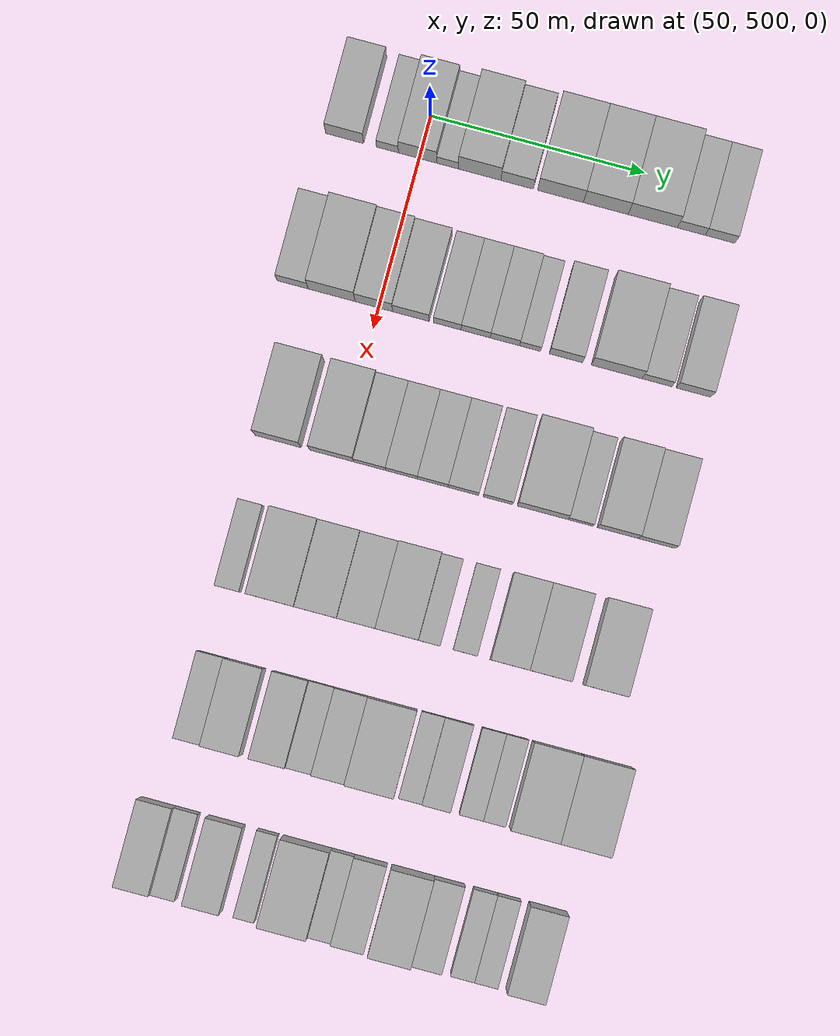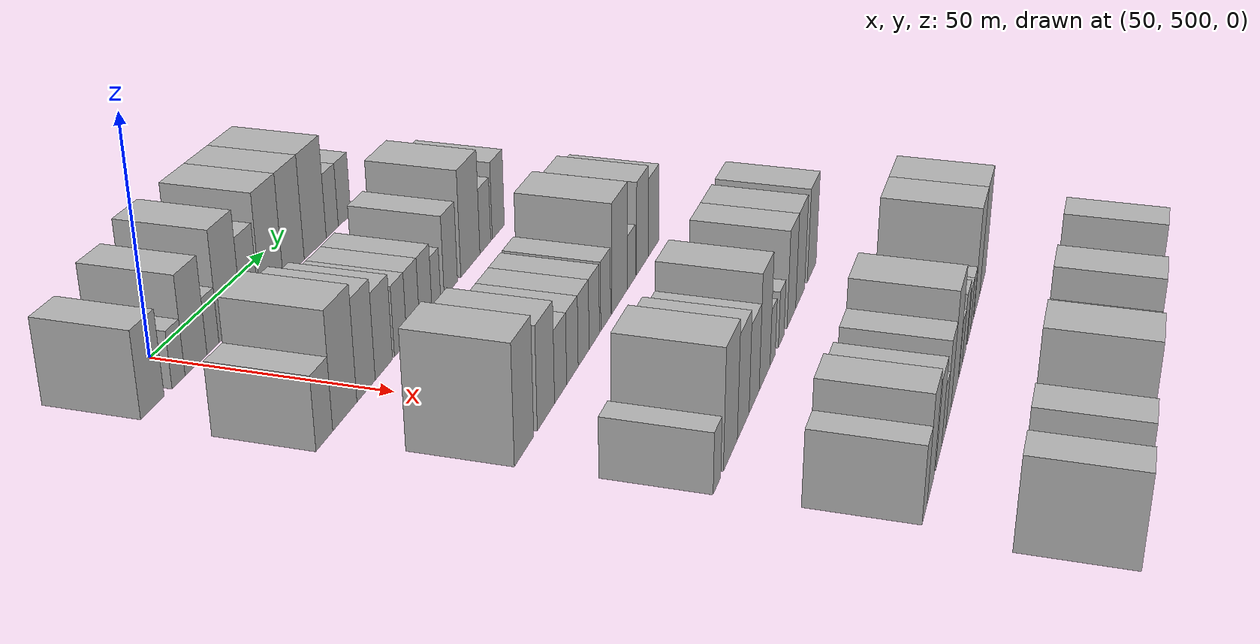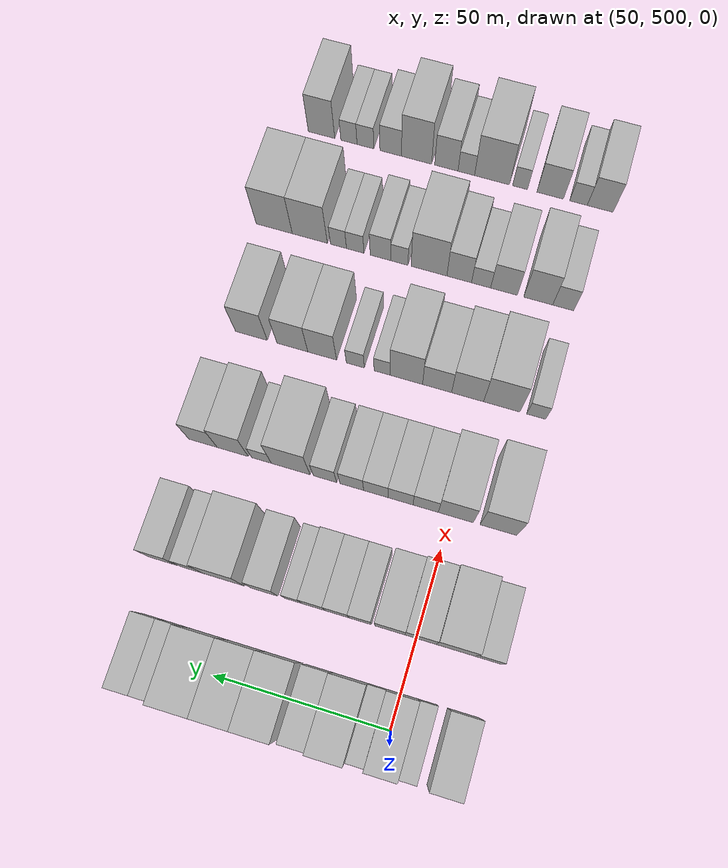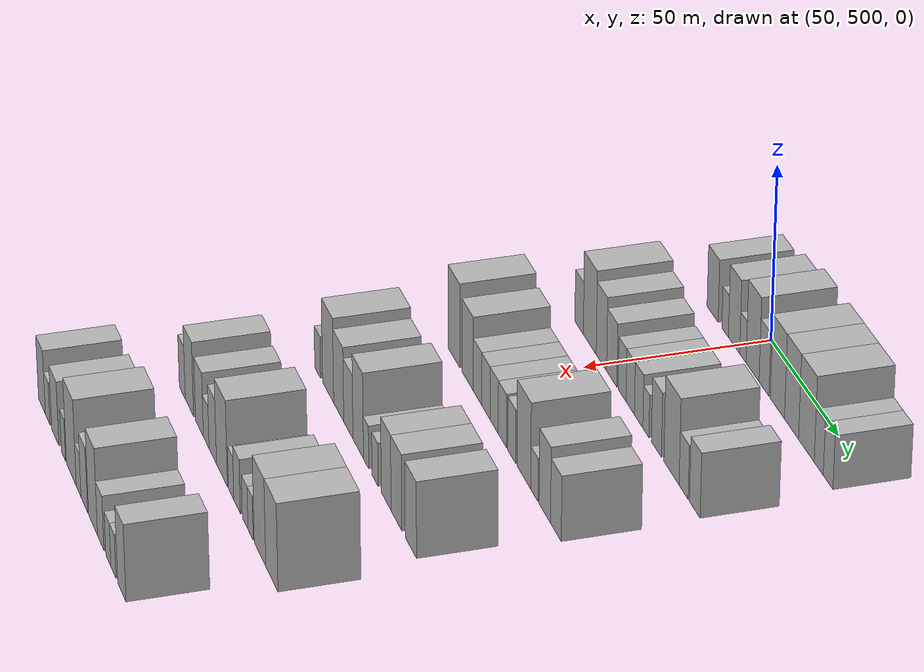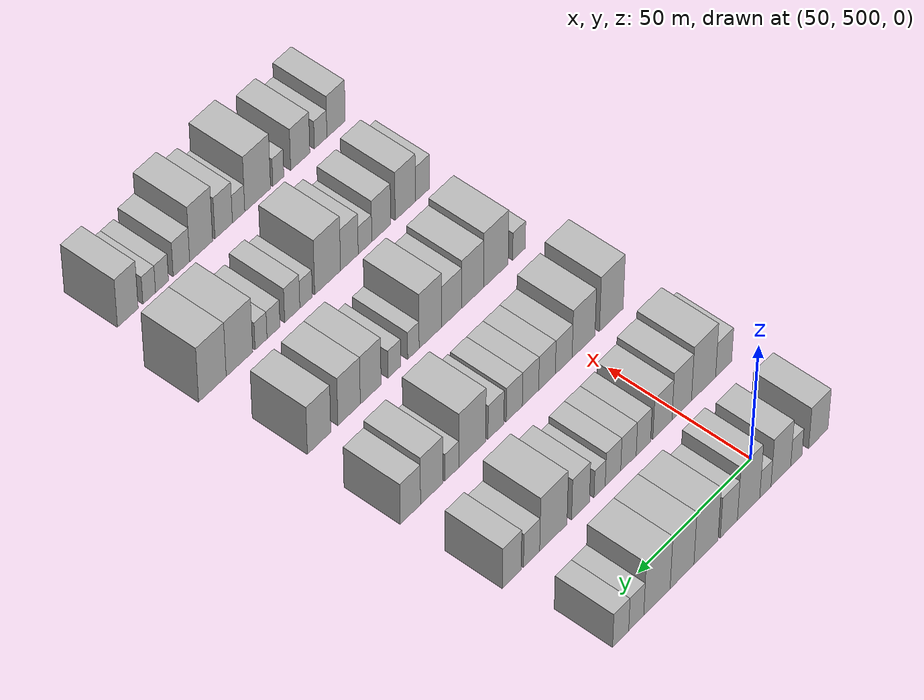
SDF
<sdf version="1.6">
 <world name="default">
  <model name="building_108">
   <static>1</static>
   <pose>50.0000 482.5983 0 0.000000 0.000000 0.000000</pose>
   <link name="link">
    <pose>0 0 9.00 0 0 0</pose>
    <collision name="collision"><geometry><box><size>20.0000 8.8290 18.0000</size></box></geometry></collision>
    <visual name="visual">
     <cast_shadows>0</cast_shadows>
     <geometry><box><size>20.0000 8.8290 18.0000</size></box></geometry>
     <material>
      <script>
       <uri>model://HANNAS_wall/materials/scripts</uri>
       <uri>model://HANNAS_wall/materials/textures</uri>
       <name>vrc/HANNAS_wall</name>
      </script>
     </material>
    </visual>
   </link>
  </model>
  <model name="building_109">
   <static>1</static>
   <pose>50.0000 492.5863 0 0.000000 0.000000 0.000000</pose>
   <link name="link">
    <pose>0 0 6.00 0 0 0</pose>
    <collision name="collision"><geometry><box><size>20.0000 5.1470 12.0000</size></box></geometry></collision>
    <visual name="visual">
     <cast_shadows>0</cast_shadows>
     <geometry><box><size>20.0000 5.1470 12.0000</size></box></geometry>
     <material>
      <script>
       <uri>model://HANNAS_wall/materials/scripts</uri>
       <uri>model://HANNAS_wall/materials/textures</uri>
       <name>vrc/HANNAS_wall</name>
      </script>
     </material>
    </visual>
   </link>
  </model>
  <model name="building_110">
   <static>1</static>
   <pose>50.0000 499.6050 0 0.000000 0.000000 0.000000</pose>
   <link name="link">
    <pose>0 0 10.50 0 0 0</pose>
    <collision name="collision"><geometry><box><size>20.0000 8.8905 21.0000</size></box></geometry></collision>
    <visual name="visual">
     <cast_shadows>0</cast_shadows>
     <geometry><box><size>20.0000 8.8905 21.0000</size></box></geometry>
     <material>
      <script>
       <uri>model://HANNAS_wall/materials/scripts</uri>
       <uri>model://HANNAS_wall/materials/textures</uri>
       <name>vrc/HANNAS_wall</name>
      </script>
     </material>
    </visual>
   </link>
  </model>
  <model name="building_111">
   <static>1</static>
   <pose>50.0000 506.5665 0 0.000000 0.000000 0.000000</pose>
   <link name="link">
    <pose>0 0 6.00 0 0 0</pose>
    <collision name="collision"><geometry><box><size>20.0000 5.0324 12.0000</size></box></geometry></collision>
    <visual name="visual">
     <cast_shadows>0</cast_shadows>
     <geometry><box><size>20.0000 5.0324 12.0000</size></box></geometry>
     <material>
      <script>
       <uri>model://HANNAS_wall/materials/scripts</uri>
       <uri>model://HANNAS_wall/materials/textures</uri>
       <name>vrc/HANNAS_wall</name>
      </script>
     </material>
    </visual>
   </link>
  </model>
  <model name="building_112">
   <static>1</static>
   <pose>50.0000 514.0779 0 0.000000 0.000000 0.000000</pose>
   <link name="link">
    <pose>0 0 12.00 0 0 0</pose>
    <collision name="collision"><geometry><box><size>20.0000 9.9904 24.0000</size></box></geometry></collision>
    <visual name="visual">
     <cast_shadows>0</cast_shadows>
     <geometry><box><size>20.0000 9.9904 24.0000</size></box></geometry>
     <material>
      <script>
       <uri>model://HANNAS_wall/materials/scripts</uri>
       <uri>model://HANNAS_wall/materials/textures</uri>
       <name>vrc/HANNAS_wall</name>
      </script>
     </material>
    </visual>
   </link>
  </model>
  <model name="building_113">
   <static>1</static>
   <pose>50.0000 522.8703 0 0.000000 0.000000 0.000000</pose>
   <link name="link">
    <pose>0 0 9.00 0 0 0</pose>
    <collision name="collision"><geometry><box><size>20.0000 7.5944 18.0000</size></box></geometry></collision>
    <visual name="visual">
     <cast_shadows>0</cast_shadows>
     <geometry><box><size>20.0000 7.5944 18.0000</size></box></geometry>
     <material>
      <script>
       <uri>model://HANNAS_wall/materials/scripts</uri>
       <uri>model://HANNAS_wall/materials/textures</uri>
       <name>vrc/HANNAS_wall</name>
      </script>
     </material>
    </visual>
   </link>
  </model>
  <model name="building_114">
   <static>1</static>
   <pose>50.0000 532.9990 0 0.000000 0.000000 0.000000</pose>
   <link name="link">
    <pose>0 0 12.00 0 0 0</pose>
    <collision name="collision"><geometry><box><size>20.0000 10.6630 24.0000</size></box></geometry></collision>
    <visual name="visual">
     <cast_shadows>0</cast_shadows>
     <geometry><box><size>20.0000 10.6630 24.0000</size></box></geometry>
     <material>
      <script>
       <uri>model://HANNAS_wall/materials/scripts</uri>
       <uri>model://HANNAS_wall/materials/textures</uri>
       <name>vrc/HANNAS_wall</name>
      </script>
     </material>
    </visual>
   </link>
  </model>
  <model name="building_115">
   <static>1</static>
   <pose>50.0000 543.5482 0 0.000000 0.000000 0.000000</pose>
   <link name="link">
    <pose>0 0 12.00 0 0 0</pose>
    <collision name="collision"><geometry><box><size>20.0000 10.4354 24.0000</size></box></geometry></collision>
    <visual name="visual">
     <cast_shadows>0</cast_shadows>
     <geometry><box><size>20.0000 10.4354 24.0000</size></box></geometry>
     <material>
      <script>
       <uri>model://HANNAS_wall/materials/scripts</uri>
       <uri>model://HANNAS_wall/materials/textures</uri>
       <name>vrc/HANNAS_wall</name>
      </script>
     </material>
    </visual>
   </link>
  </model>
  <model name="building_116">
   <static>1</static>
   <pose>50.0000 554.5096 0 0.000000 0.000000 0.000000</pose>
   <link name="link">
    <pose>0 0 12.00 0 0 0</pose>
    <collision name="collision"><geometry><box><size>20.0000 11.4875 24.0000</size></box></geometry></collision>
    <visual name="visual">
     <cast_shadows>0</cast_shadows>
     <geometry><box><size>20.0000 11.4875 24.0000</size></box></geometry>
     <material>
      <script>
       <uri>model://HANNAS_wall/materials/scripts</uri>
       <uri>model://HANNAS_wall/materials/textures</uri>
       <name>vrc/HANNAS_wall</name>
      </script>
     </material>
    </visual>
   </link>
  </model>
  <model name="building_117">
   <static>1</static>
   <pose>50.0000 563.5167 0 0.000000 0.000000 0.000000</pose>
   <link name="link">
    <pose>0 0 7.50 0 0 0</pose>
    <collision name="collision"><geometry><box><size>20.0000 6.5268 15.0000</size></box></geometry></collision>
    <visual name="visual">
     <cast_shadows>0</cast_shadows>
     <geometry><box><size>20.0000 6.5268 15.0000</size></box></geometry>
     <material>
      <script>
       <uri>model://HANNAS_wall/materials/scripts</uri>
       <uri>model://HANNAS_wall/materials/textures</uri>
       <name>vrc/HANNAS_wall</name>
      </script>
     </material>
    </visual>
   </link>
  </model>
  <model name="building_118">
   <static>1</static>
   <pose>50.0000 570.2498 0 0.000000 0.000000 0.000000</pose>
   <link name="link">
    <pose>0 0 7.50 0 0 0</pose>
    <collision name="collision"><geometry><box><size>20.0000 6.9393 15.0000</size></box></geometry></collision>
    <visual name="visual">
     <cast_shadows>0</cast_shadows>
     <geometry><box><size>20.0000 6.9393 15.0000</size></box></geometry>
     <material>
      <script>
       <uri>model://HANNAS_wall/materials/scripts</uri>
       <uri>model://HANNAS_wall/materials/textures</uri>
       <name>vrc/HANNAS_wall</name>
      </script>
     </material>
    </visual>
   </link>
  </model>
  <model name="building_232">
   <static>1</static>
   <pose>85.0000 479.9256 0 0.000000 0.000000 0.000000</pose>
   <link name="link">
    <pose>0 0 7.50 0 0 0</pose>
    <collision name="collision"><geometry><box><size>20.0000 7.2743 15.0000</size></box></geometry></collision>
    <visual name="visual">
     <cast_shadows>0</cast_shadows>
     <geometry><box><size>20.0000 7.2743 15.0000</size></box></geometry>
     <material>
      <script>
       <uri>model://HANNAS_wall/materials/scripts</uri>
       <uri>model://HANNAS_wall/materials/textures</uri>
       <name>vrc/HANNAS_wall</name>
      </script>
     </material>
    </visual>
   </link>
  </model>
  <model name="building_233">
   <static>1</static>
   <pose>85.0000 489.0244 0 0.000000 0.000000 0.000000</pose>
   <link name="link">
    <pose>0 0 12.00 0 0 0</pose>
    <collision name="collision"><geometry><box><size>20.0000 10.9233 24.0000</size></box></geometry></collision>
    <visual name="visual">
     <cast_shadows>0</cast_shadows>
     <geometry><box><size>20.0000 10.9233 24.0000</size></box></geometry>
     <material>
      <script>
       <uri>model://HANNAS_wall/materials/scripts</uri>
       <uri>model://HANNAS_wall/materials/textures</uri>
       <name>vrc/HANNAS_wall</name>
      </script>
     </material>
    </visual>
   </link>
  </model>
  <model name="building_234">
   <static>1</static>
   <pose>85.0000 498.8545 0 0.000000 0.000000 0.000000</pose>
   <link name="link">
    <pose>0 0 10.50 0 0 0</pose>
    <collision name="collision"><geometry><box><size>20.0000 8.7369 21.0000</size></box></geometry></collision>
    <visual name="visual">
     <cast_shadows>0</cast_shadows>
     <geometry><box><size>20.0000 8.7369 21.0000</size></box></geometry>
     <material>
      <script>
       <uri>model://HANNAS_wall/materials/scripts</uri>
       <uri>model://HANNAS_wall/materials/textures</uri>
       <name>vrc/HANNAS_wall</name>
      </script>
     </material>
    </visual>
   </link>
  </model>
  <model name="building_235">
   <static>1</static>
   <pose>85.0000 507.4960 0 0.000000 0.000000 0.000000</pose>
   <link name="link">
    <pose>0 0 9.00 0 0 0</pose>
    <collision name="collision"><geometry><box><size>20.0000 8.5461 18.0000</size></box></geometry></collision>
    <visual name="visual">
     <cast_shadows>0</cast_shadows>
     <geometry><box><size>20.0000 8.5461 18.0000</size></box></geometry>
     <material>
      <script>
       <uri>model://HANNAS_wall/materials/scripts</uri>
       <uri>model://HANNAS_wall/materials/textures</uri>
       <name>vrc/HANNAS_wall</name>
      </script>
     </material>
    </visual>
   </link>
  </model>
  <model name="building_236">
   <static>1</static>
   <pose>85.0000 515.9806 0 0.000000 0.000000 0.000000</pose>
   <link name="link">
    <pose>0 0 7.50 0 0 0</pose>
    <collision name="collision"><geometry><box><size>20.0000 6.4232 15.0000</size></box></geometry></collision>
    <visual name="visual">
     <cast_shadows>0</cast_shadows>
     <geometry><box><size>20.0000 6.4232 15.0000</size></box></geometry>
     <material>
      <script>
       <uri>model://HANNAS_wall/materials/scripts</uri>
       <uri>model://HANNAS_wall/materials/textures</uri>
       <name>vrc/HANNAS_wall</name>
      </script>
     </material>
    </visual>
   </link>
  </model>
  <model name="building_237">
   <static>1</static>
   <pose>85.0000 522.6105 0 0.000000 0.000000 0.000000</pose>
   <link name="link">
    <pose>0 0 7.50 0 0 0</pose>
    <collision name="collision"><geometry><box><size>20.0000 6.8366 15.0000</size></box></geometry></collision>
    <visual name="visual">
     <cast_shadows>0</cast_shadows>
     <geometry><box><size>20.0000 6.8366 15.0000</size></box></geometry>
     <material>
      <script>
       <uri>model://HANNAS_wall/materials/scripts</uri>
       <uri>model://HANNAS_wall/materials/textures</uri>
       <name>vrc/HANNAS_wall</name>
      </script>
     </material>
    </visual>
   </link>
  </model>
  <model name="building_238">
   <static>1</static>
   <pose>85.0000 529.4491 0 0.000000 0.000000 0.000000</pose>
   <link name="link">
    <pose>0 0 7.50 0 0 0</pose>
    <collision name="collision"><geometry><box><size>20.0000 6.8406 15.0000</size></box></geometry></collision>
    <visual name="visual">
     <cast_shadows>0</cast_shadows>
     <geometry><box><size>20.0000 6.8406 15.0000</size></box></geometry>
     <material>
      <script>
       <uri>model://HANNAS_wall/materials/scripts</uri>
       <uri>model://HANNAS_wall/materials/textures</uri>
       <name>vrc/HANNAS_wall</name>
      </script>
     </material>
    </visual>
   </link>
  </model>
  <model name="building_239">
   <static>1</static>
   <pose>85.0000 535.3175 0 0.000000 0.000000 0.000000</pose>
   <link name="link">
    <pose>0 0 6.00 0 0 0</pose>
    <collision name="collision"><geometry><box><size>20.0000 4.8964 12.0000</size></box></geometry></collision>
    <visual name="visual">
     <cast_shadows>0</cast_shadows>
     <geometry><box><size>20.0000 4.8964 12.0000</size></box></geometry>
     <material>
      <script>
       <uri>model://HANNAS_wall/materials/scripts</uri>
       <uri>model://HANNAS_wall/materials/textures</uri>
       <name>vrc/HANNAS_wall</name>
      </script>
     </material>
    </visual>
   </link>
  </model>
  <model name="building_240">
   <static>1</static>
   <pose>85.0000 543.6675 0 0.000000 0.000000 0.000000</pose>
   <link name="link">
    <pose>0 0 9.00 0 0 0</pose>
    <collision name="collision"><geometry><box><size>20.0000 7.8035 18.0000</size></box></geometry></collision>
    <visual name="visual">
     <cast_shadows>0</cast_shadows>
     <geometry><box><size>20.0000 7.8035 18.0000</size></box></geometry>
     <material>
      <script>
       <uri>model://HANNAS_wall/materials/scripts</uri>
       <uri>model://HANNAS_wall/materials/textures</uri>
       <name>vrc/HANNAS_wall</name>
      </script>
     </material>
    </visual>
   </link>
  </model>
  <model name="building_241">
   <static>1</static>
   <pose>85.0000 555.4883 0 0.000000 0.000000 0.000000</pose>
   <link name="link">
    <pose>0 0 12.00 0 0 0</pose>
    <collision name="collision"><geometry><box><size>20.0000 11.8382 24.0000</size></box></geometry></collision>
    <visual name="visual">
     <cast_shadows>0</cast_shadows>
     <geometry><box><size>20.0000 11.8382 24.0000</size></box></geometry>
     <material>
      <script>
       <uri>model://HANNAS_wall/materials/scripts</uri>
       <uri>model://HANNAS_wall/materials/textures</uri>
       <name>vrc/HANNAS_wall</name>
      </script>
     </material>
    </visual>
   </link>
  </model>
  <model name="building_242">
   <static>1</static>
   <pose>85.0000 564.8891 0 0.000000 0.000000 0.000000</pose>
   <link name="link">
    <pose>0 0 7.50 0 0 0</pose>
    <collision name="collision"><geometry><box><size>20.0000 6.9633 15.0000</size></box></geometry></collision>
    <visual name="visual">
     <cast_shadows>0</cast_shadows>
     <geometry><box><size>20.0000 6.9633 15.0000</size></box></geometry>
     <material>
      <script>
       <uri>model://HANNAS_wall/materials/scripts</uri>
       <uri>model://HANNAS_wall/materials/textures</uri>
       <name>vrc/HANNAS_wall</name>
      </script>
     </material>
    </visual>
   </link>
  </model>
  <model name="building_243">
   <static>1</static>
   <pose>85.0000 573.4168 0 0.000000 0.000000 0.000000</pose>
   <link name="link">
    <pose>0 0 9.00 0 0 0</pose>
    <collision name="collision"><geometry><box><size>20.0000 8.0922 18.0000</size></box></geometry></collision>
    <visual name="visual">
     <cast_shadows>0</cast_shadows>
     <geometry><box><size>20.0000 8.0922 18.0000</size></box></geometry>
     <material>
      <script>
       <uri>model://HANNAS_wall/materials/scripts</uri>
       <uri>model://HANNAS_wall/materials/textures</uri>
       <name>vrc/HANNAS_wall</name>
      </script>
     </material>
    </visual>
   </link>
  </model>
  <model name="building_353">
   <static>1</static>
   <pose>120.0000 486.0662 0 0.000000 0.000000 0.000000</pose>
   <link name="link">
    <pose>0 0 12.00 0 0 0</pose>
    <collision name="collision"><geometry><box><size>20.0000 10.6864 24.0000</size></box></geometry></collision>
    <visual name="visual">
     <cast_shadows>0</cast_shadows>
     <geometry><box><size>20.0000 10.6864 24.0000</size></box></geometry>
     <material>
      <script>
       <uri>model://HANNAS_wall/materials/scripts</uri>
       <uri>model://HANNAS_wall/materials/textures</uri>
       <name>vrc/HANNAS_wall</name>
      </script>
     </material>
    </visual>
   </link>
  </model>
  <model name="building_354">
   <static>1</static>
   <pose>120.0000 498.5202 0 0.000000 0.000000 0.000000</pose>
   <link name="link">
    <pose>0 0 10.50 0 0 0</pose>
    <collision name="collision"><geometry><box><size>20.0000 10.2215 21.0000</size></box></geometry></collision>
    <visual name="visual">
     <cast_shadows>0</cast_shadows>
     <geometry><box><size>20.0000 10.2215 21.0000</size></box></geometry>
     <material>
      <script>
       <uri>model://HANNAS_wall/materials/scripts</uri>
       <uri>model://HANNAS_wall/materials/textures</uri>
       <name>vrc/HANNAS_wall</name>
      </script>
     </material>
    </visual>
   </link>
  </model>
  <model name="building_355">
   <static>1</static>
   <pose>120.0000 507.3634 0 0.000000 0.000000 0.000000</pose>
   <link name="link">
    <pose>0 0 7.50 0 0 0</pose>
    <collision name="collision"><geometry><box><size>20.0000 7.4649 15.0000</size></box></geometry></collision>
    <visual name="visual">
     <cast_shadows>0</cast_shadows>
     <geometry><box><size>20.0000 7.4649 15.0000</size></box></geometry>
     <material>
      <script>
       <uri>model://HANNAS_wall/materials/scripts</uri>
       <uri>model://HANNAS_wall/materials/textures</uri>
       <name>vrc/HANNAS_wall</name>
      </script>
     </material>
    </visual>
   </link>
  </model>
  <model name="building_356">
   <static>1</static>
   <pose>120.0000 514.7838 0 0.000000 0.000000 0.000000</pose>
   <link name="link">
    <pose>0 0 7.50 0 0 0</pose>
    <collision name="collision"><geometry><box><size>20.0000 7.3758 15.0000</size></box></geometry></collision>
    <visual name="visual">
     <cast_shadows>0</cast_shadows>
     <geometry><box><size>20.0000 7.3758 15.0000</size></box></geometry>
     <material>
      <script>
       <uri>model://HANNAS_wall/materials/scripts</uri>
       <uri>model://HANNAS_wall/materials/textures</uri>
       <name>vrc/HANNAS_wall</name>
      </script>
     </material>
    </visual>
   </link>
  </model>
  <model name="building_357">
   <static>1</static>
   <pose>120.0000 522.0726 0 0.000000 0.000000 0.000000</pose>
   <link name="link">
    <pose>0 0 7.50 0 0 0</pose>
    <collision name="collision"><geometry><box><size>20.0000 7.2019 15.0000</size></box></geometry></collision>
    <visual name="visual">
     <cast_shadows>0</cast_shadows>
     <geometry><box><size>20.0000 7.2019 15.0000</size></box></geometry>
     <material>
      <script>
       <uri>model://HANNAS_wall/materials/scripts</uri>
       <uri>model://HANNAS_wall/materials/textures</uri>
       <name>vrc/HANNAS_wall</name>
      </script>
     </material>
    </visual>
   </link>
  </model>
  <model name="building_358">
   <static>1</static>
   <pose>120.0000 529.2084 0 0.000000 0.000000 0.000000</pose>
   <link name="link">
    <pose>0 0 7.50 0 0 0</pose>
    <collision name="collision"><geometry><box><size>20.0000 7.0698 15.0000</size></box></geometry></collision>
    <visual name="visual">
     <cast_shadows>0</cast_shadows>
     <geometry><box><size>20.0000 7.0698 15.0000</size></box></geometry>
     <material>
      <script>
       <uri>model://HANNAS_wall/materials/scripts</uri>
       <uri>model://HANNAS_wall/materials/textures</uri>
       <name>vrc/HANNAS_wall</name>
      </script>
     </material>
    </visual>
   </link>
  </model>
  <model name="building_359">
   <static>1</static>
   <pose>120.0000 537.2157 0 0.000000 0.000000 0.000000</pose>
   <link name="link">
    <pose>0 0 7.50 0 0 0</pose>
    <collision name="collision"><geometry><box><size>20.0000 6.9448 15.0000</size></box></geometry></collision>
    <visual name="visual">
     <cast_shadows>0</cast_shadows>
     <geometry><box><size>20.0000 6.9448 15.0000</size></box></geometry>
     <material>
      <script>
       <uri>model://HANNAS_wall/materials/scripts</uri>
       <uri>model://HANNAS_wall/materials/textures</uri>
       <name>vrc/HANNAS_wall</name>
      </script>
     </material>
    </visual>
   </link>
  </model>
  <model name="building_360">
   <static>1</static>
   <pose>120.0000 547.5277 0 0.000000 0.000000 0.000000</pose>
   <link name="link">
    <pose>0 0 12.00 0 0 0</pose>
    <collision name="collision"><geometry><box><size>20.0000 11.6793 24.0000</size></box></geometry></collision>
    <visual name="visual">
     <cast_shadows>0</cast_shadows>
     <geometry><box><size>20.0000 11.6793 24.0000</size></box></geometry>
     <material>
      <script>
       <uri>model://HANNAS_wall/materials/scripts</uri>
       <uri>model://HANNAS_wall/materials/textures</uri>
       <name>vrc/HANNAS_wall</name>
      </script>
     </material>
    </visual>
   </link>
  </model>
  <model name="building_361">
   <static>1</static>
   <pose>120.0000 556.3494 0 0.000000 0.000000 0.000000</pose>
   <link name="link">
    <pose>0 0 6.00 0 0 0</pose>
    <collision name="collision"><geometry><box><size>20.0000 5.9642 12.0000</size></box></geometry></collision>
    <visual name="visual">
     <cast_shadows>0</cast_shadows>
     <geometry><box><size>20.0000 5.9642 12.0000</size></box></geometry>
     <material>
      <script>
       <uri>model://HANNAS_wall/materials/scripts</uri>
       <uri>model://HANNAS_wall/materials/textures</uri>
       <name>vrc/HANNAS_wall</name>
      </script>
     </material>
    </visual>
   </link>
  </model>
  <model name="building_362">
   <static>1</static>
   <pose>120.0000 565.0653 0 0.000000 0.000000 0.000000</pose>
   <link name="link">
    <pose>0 0 10.50 0 0 0</pose>
    <collision name="collision"><geometry><box><size>20.0000 9.4675 21.0000</size></box></geometry></collision>
    <visual name="visual">
     <cast_shadows>0</cast_shadows>
     <geometry><box><size>20.0000 9.4675 21.0000</size></box></geometry>
     <material>
      <script>
       <uri>model://HANNAS_wall/materials/scripts</uri>
       <uri>model://HANNAS_wall/materials/textures</uri>
       <name>vrc/HANNAS_wall</name>
      </script>
     </material>
    </visual>
   </link>
  </model>
  <model name="building_363">
   <static>1</static>
   <pose>120.0000 574.1160 0 0.000000 0.000000 0.000000</pose>
   <link name="link">
    <pose>0 0 9.00 0 0 0</pose>
    <collision name="collision"><geometry><box><size>20.0000 8.6341 18.0000</size></box></geometry></collision>
    <visual name="visual">
     <cast_shadows>0</cast_shadows>
     <geometry><box><size>20.0000 8.6341 18.0000</size></box></geometry>
     <material>
      <script>
       <uri>model://HANNAS_wall/materials/scripts</uri>
       <uri>model://HANNAS_wall/materials/textures</uri>
       <name>vrc/HANNAS_wall</name>
      </script>
     </material>
    </visual>
   </link>
  </model>
  <model name="building_476">
   <static>1</static>
   <pose>155.0000 483.9793 0 0.000000 0.000000 0.000000</pose>
   <link name="link">
    <pose>0 0 6.00 0 0 0</pose>
    <collision name="collision"><geometry><box><size>20.0000 5.6826 12.0000</size></box></geometry></collision>
    <visual name="visual">
     <cast_shadows>0</cast_shadows>
     <geometry><box><size>20.0000 5.6826 12.0000</size></box></geometry>
     <material>
      <script>
       <uri>model://HANNAS_wall/materials/scripts</uri>
       <uri>model://HANNAS_wall/materials/textures</uri>
       <name>vrc/HANNAS_wall</name>
      </script>
     </material>
    </visual>
   </link>
  </model>
  <model name="building_477">
   <static>1</static>
   <pose>155.0000 494.3110 0 0.000000 0.000000 0.000000</pose>
   <link name="link">
    <pose>0 0 12.00 0 0 0</pose>
    <collision name="collision"><geometry><box><size>20.0000 10.9807 24.0000</size></box></geometry></collision>
    <visual name="visual">
     <cast_shadows>0</cast_shadows>
     <geometry><box><size>20.0000 10.9807 24.0000</size></box></geometry>
     <material>
      <script>
       <uri>model://HANNAS_wall/materials/scripts</uri>
       <uri>model://HANNAS_wall/materials/textures</uri>
       <name>vrc/HANNAS_wall</name>
      </script>
     </material>
    </visual>
   </link>
  </model>
  <model name="building_478">
   <static>1</static>
   <pose>155.0000 504.6440 0 0.000000 0.000000 0.000000</pose>
   <link name="link">
    <pose>0 0 10.50 0 0 0</pose>
    <collision name="collision"><geometry><box><size>20.0000 9.6855 21.0000</size></box></geometry></collision>
    <visual name="visual">
     <cast_shadows>0</cast_shadows>
     <geometry><box><size>20.0000 9.6855 21.0000</size></box></geometry>
     <material>
      <script>
       <uri>model://HANNAS_wall/materials/scripts</uri>
       <uri>model://HANNAS_wall/materials/textures</uri>
       <name>vrc/HANNAS_wall</name>
      </script>
     </material>
    </visual>
   </link>
  </model>
  <model name="building_479">
   <static>1</static>
   <pose>155.0000 513.9125 0 0.000000 0.000000 0.000000</pose>
   <link name="link">
    <pose>0 0 9.00 0 0 0</pose>
    <collision name="collision"><geometry><box><size>20.0000 8.8515 18.0000</size></box></geometry></collision>
    <visual name="visual">
     <cast_shadows>0</cast_shadows>
     <geometry><box><size>20.0000 8.8515 18.0000</size></box></geometry>
     <material>
      <script>
       <uri>model://HANNAS_wall/materials/scripts</uri>
       <uri>model://HANNAS_wall/materials/textures</uri>
       <name>vrc/HANNAS_wall</name>
      </script>
     </material>
    </visual>
   </link>
  </model>
  <model name="building_480">
   <static>1</static>
   <pose>155.0000 523.2736 0 0.000000 0.000000 0.000000</pose>
   <link name="link">
    <pose>0 0 12.00 0 0 0</pose>
    <collision name="collision"><geometry><box><size>20.0000 9.8708 24.0000</size></box></geometry></collision>
    <visual name="visual">
     <cast_shadows>0</cast_shadows>
     <geometry><box><size>20.0000 9.8708 24.0000</size></box></geometry>
     <material>
      <script>
       <uri>model://HANNAS_wall/materials/scripts</uri>
       <uri>model://HANNAS_wall/materials/textures</uri>
       <name>vrc/HANNAS_wall</name>
      </script>
     </material>
    </visual>
   </link>
  </model>
  <model name="building_481">
   <static>1</static>
   <pose>155.0000 530.6958 0 0.000000 0.000000 0.000000</pose>
   <link name="link">
    <pose>0 0 6.00 0 0 0</pose>
    <collision name="collision"><geometry><box><size>20.0000 4.9736 12.0000</size></box></geometry></collision>
    <visual name="visual">
     <cast_shadows>0</cast_shadows>
     <geometry><box><size>20.0000 4.9736 12.0000</size></box></geometry>
     <material>
      <script>
       <uri>model://HANNAS_wall/materials/scripts</uri>
       <uri>model://HANNAS_wall/materials/textures</uri>
       <name>vrc/HANNAS_wall</name>
      </script>
     </material>
    </visual>
   </link>
  </model>
  <model name="building_482">
   <static>1</static>
   <pose>155.0000 538.9626 0 0.000000 0.000000 0.000000</pose>
   <link name="link">
    <pose>0 0 6.00 0 0 0</pose>
    <collision name="collision"><geometry><box><size>20.0000 5.5601 12.0000</size></box></geometry></collision>
    <visual name="visual">
     <cast_shadows>0</cast_shadows>
     <geometry><box><size>20.0000 5.5601 12.0000</size></box></geometry>
     <material>
      <script>
       <uri>model://HANNAS_wall/materials/scripts</uri>
       <uri>model://HANNAS_wall/materials/textures</uri>
       <name>vrc/HANNAS_wall</name>
      </script>
     </material>
    </visual>
   </link>
  </model>
  <model name="building_483">
   <static>1</static>
   <pose>155.0000 549.2106 0 0.000000 0.000000 0.000000</pose>
   <link name="link">
    <pose>0 0 10.50 0 0 0</pose>
    <collision name="collision"><geometry><box><size>20.0000 8.9359 21.0000</size></box></geometry></collision>
    <visual name="visual">
     <cast_shadows>0</cast_shadows>
     <geometry><box><size>20.0000 8.9359 21.0000</size></box></geometry>
     <material>
      <script>
       <uri>model://HANNAS_wall/materials/scripts</uri>
       <uri>model://HANNAS_wall/materials/textures</uri>
       <name>vrc/HANNAS_wall</name>
      </script>
     </material>
    </visual>
   </link>
  </model>
  <model name="building_484">
   <static>1</static>
   <pose>155.0000 558.4959 0 0.000000 0.000000 0.000000</pose>
   <link name="link">
    <pose>0 0 10.50 0 0 0</pose>
    <collision name="collision"><geometry><box><size>20.0000 9.6346 21.0000</size></box></geometry></collision>
    <visual name="visual">
     <cast_shadows>0</cast_shadows>
     <geometry><box><size>20.0000 9.6346 21.0000</size></box></geometry>
     <material>
      <script>
       <uri>model://HANNAS_wall/materials/scripts</uri>
       <uri>model://HANNAS_wall/materials/textures</uri>
       <name>vrc/HANNAS_wall</name>
      </script>
     </material>
    </visual>
   </link>
  </model>
  <model name="building_485">
   <static>1</static>
   <pose>155.0000 571.3029 0 0.000000 0.000000 0.000000</pose>
   <link name="link">
    <pose>0 0 10.50 0 0 0</pose>
    <collision name="collision"><geometry><box><size>20.0000 9.9795 21.0000</size></box></geometry></collision>
    <visual name="visual">
     <cast_shadows>0</cast_shadows>
     <geometry><box><size>20.0000 9.9795 21.0000</size></box></geometry>
     <material>
      <script>
       <uri>model://HANNAS_wall/materials/scripts</uri>
       <uri>model://HANNAS_wall/materials/textures</uri>
       <name>vrc/HANNAS_wall</name>
      </script>
     </material>
    </visual>
   </link>
  </model>
  <model name="building_603">
   <static>1</static>
   <pose>190.0000 484.5031 0 0.000000 0.000000 0.000000</pose>
   <link name="link">
    <pose>0 0 7.50 0 0 0</pose>
    <collision name="collision"><geometry><box><size>20.0000 6.4365 15.0000</size></box></geometry></collision>
    <visual name="visual">
     <cast_shadows>0</cast_shadows>
     <geometry><box><size>20.0000 6.4365 15.0000</size></box></geometry>
     <material>
      <script>
       <uri>model://HANNAS_wall/materials/scripts</uri>
       <uri>model://HANNAS_wall/materials/textures</uri>
       <name>vrc/HANNAS_wall</name>
      </script>
     </material>
    </visual>
   </link>
  </model>
  <model name="building_604">
   <static>1</static>
   <pose>190.0000 492.2093 0 0.000000 0.000000 0.000000</pose>
   <link name="link">
    <pose>0 0 10.50 0 0 0</pose>
    <collision name="collision"><geometry><box><size>20.0000 8.9758 21.0000</size></box></geometry></collision>
    <visual name="visual">
     <cast_shadows>0</cast_shadows>
     <geometry><box><size>20.0000 8.9758 21.0000</size></box></geometry>
     <material>
      <script>
       <uri>model://HANNAS_wall/materials/scripts</uri>
       <uri>model://HANNAS_wall/materials/textures</uri>
       <name>vrc/HANNAS_wall</name>
      </script>
     </material>
    </visual>
   </link>
  </model>
  <model name="building_605">
   <static>1</static>
   <pose>190.0000 502.8527 0 0.000000 0.000000 0.000000</pose>
   <link name="link">
    <pose>0 0 9.00 0 0 0</pose>
    <collision name="collision"><geometry><box><size>20.0000 8.3111 18.0000</size></box></geometry></collision>
    <visual name="visual">
     <cast_shadows>0</cast_shadows>
     <geometry><box><size>20.0000 8.3111 18.0000</size></box></geometry>
     <material>
      <script>
       <uri>model://HANNAS_wall/materials/scripts</uri>
       <uri>model://HANNAS_wall/materials/textures</uri>
       <name>vrc/HANNAS_wall</name>
      </script>
     </material>
    </visual>
   </link>
  </model>
  <model name="building_606">
   <static>1</static>
   <pose>190.0000 510.0054 0 0.000000 0.000000 0.000000</pose>
   <link name="link">
    <pose>0 0 6.00 0 0 0</pose>
    <collision name="collision"><geometry><box><size>20.0000 5.9942 12.0000</size></box></geometry></collision>
    <visual name="visual">
     <cast_shadows>0</cast_shadows>
     <geometry><box><size>20.0000 5.9942 12.0000</size></box></geometry>
     <material>
      <script>
       <uri>model://HANNAS_wall/materials/scripts</uri>
       <uri>model://HANNAS_wall/materials/textures</uri>
       <name>vrc/HANNAS_wall</name>
      </script>
     </material>
    </visual>
   </link>
  </model>
  <model name="building_607">
   <static>1</static>
   <pose>190.0000 516.8605 0 0.000000 0.000000 0.000000</pose>
   <link name="link">
    <pose>0 0 9.00 0 0 0</pose>
    <collision name="collision"><geometry><box><size>20.0000 7.7160 18.0000</size></box></geometry></collision>
    <visual name="visual">
     <cast_shadows>0</cast_shadows>
     <geometry><box><size>20.0000 7.7160 18.0000</size></box></geometry>
     <material>
      <script>
       <uri>model://HANNAS_wall/materials/scripts</uri>
       <uri>model://HANNAS_wall/materials/textures</uri>
       <name>vrc/HANNAS_wall</name>
      </script>
     </material>
    </visual>
   </link>
  </model>
  <model name="building_608">
   <static>1</static>
   <pose>190.0000 526.3608 0 0.000000 0.000000 0.000000</pose>
   <link name="link">
    <pose>0 0 12.00 0 0 0</pose>
    <collision name="collision"><geometry><box><size>20.0000 11.2845 24.0000</size></box></geometry></collision>
    <visual name="visual">
     <cast_shadows>0</cast_shadows>
     <geometry><box><size>20.0000 11.2845 24.0000</size></box></geometry>
     <material>
      <script>
       <uri>model://HANNAS_wall/materials/scripts</uri>
       <uri>model://HANNAS_wall/materials/textures</uri>
       <name>vrc/HANNAS_wall</name>
      </script>
     </material>
    </visual>
   </link>
  </model>
  <model name="building_609">
   <static>1</static>
   <pose>190.0000 535.7082 0 0.000000 0.000000 0.000000</pose>
   <link name="link">
    <pose>0 0 6.00 0 0 0</pose>
    <collision name="collision"><geometry><box><size>20.0000 5.4103 12.0000</size></box></geometry></collision>
    <visual name="visual">
     <cast_shadows>0</cast_shadows>
     <geometry><box><size>20.0000 5.4103 12.0000</size></box></geometry>
     <material>
      <script>
       <uri>model://HANNAS_wall/materials/scripts</uri>
       <uri>model://HANNAS_wall/materials/textures</uri>
       <name>vrc/HANNAS_wall</name>
      </script>
     </material>
    </visual>
   </link>
  </model>
  <model name="building_610">
   <static>1</static>
   <pose>190.0000 541.6991 0 0.000000 0.000000 0.000000</pose>
   <link name="link">
    <pose>0 0 7.50 0 0 0</pose>
    <collision name="collision"><geometry><box><size>20.0000 6.5715 15.0000</size></box></geometry></collision>
    <visual name="visual">
     <cast_shadows>0</cast_shadows>
     <geometry><box><size>20.0000 6.5715 15.0000</size></box></geometry>
     <material>
      <script>
       <uri>model://HANNAS_wall/materials/scripts</uri>
       <uri>model://HANNAS_wall/materials/textures</uri>
       <name>vrc/HANNAS_wall</name>
      </script>
     </material>
    </visual>
   </link>
  </model>
  <model name="building_611">
   <static>1</static>
   <pose>190.0000 549.7727 0 0.000000 0.000000 0.000000</pose>
   <link name="link">
    <pose>0 0 6.00 0 0 0</pose>
    <collision name="collision"><geometry><box><size>20.0000 5.5758 12.0000</size></box></geometry></collision>
    <visual name="visual">
     <cast_shadows>0</cast_shadows>
     <geometry><box><size>20.0000 5.5758 12.0000</size></box></geometry>
     <material>
      <script>
       <uri>model://HANNAS_wall/materials/scripts</uri>
       <uri>model://HANNAS_wall/materials/textures</uri>
       <name>vrc/HANNAS_wall</name>
      </script>
     </material>
    </visual>
   </link>
  </model>
  <model name="building_612">
   <static>1</static>
   <pose>190.0000 555.1135 0 0.000000 0.000000 0.000000</pose>
   <link name="link">
    <pose>0 0 6.00 0 0 0</pose>
    <collision name="collision"><geometry><box><size>20.0000 5.1058 12.0000</size></box></geometry></collision>
    <visual name="visual">
     <cast_shadows>0</cast_shadows>
     <geometry><box><size>20.0000 5.1058 12.0000</size></box></geometry>
     <material>
      <script>
       <uri>model://HANNAS_wall/materials/scripts</uri>
       <uri>model://HANNAS_wall/materials/textures</uri>
       <name>vrc/HANNAS_wall</name>
      </script>
     </material>
    </visual>
   </link>
  </model>
  <model name="building_613">
   <static>1</static>
   <pose>190.0000 564.3104 0 0.000000 0.000000 0.000000</pose>
   <link name="link">
    <pose>0 0 12.00 0 0 0</pose>
    <collision name="collision"><geometry><box><size>20.0000 11.2881 24.0000</size></box></geometry></collision>
    <visual name="visual">
     <cast_shadows>0</cast_shadows>
     <geometry><box><size>20.0000 11.2881 24.0000</size></box></geometry>
     <material>
      <script>
       <uri>model://HANNAS_wall/materials/scripts</uri>
       <uri>model://HANNAS_wall/materials/textures</uri>
       <name>vrc/HANNAS_wall</name>
      </script>
     </material>
    </visual>
   </link>
  </model>
  <model name="building_614">
   <static>1</static>
   <pose>190.0000 575.7893 0 0.000000 0.000000 0.000000</pose>
   <link name="link">
    <pose>0 0 12.00 0 0 0</pose>
    <collision name="collision"><geometry><box><size>20.0000 11.6698 24.0000</size></box></geometry></collision>
    <visual name="visual">
     <cast_shadows>0</cast_shadows>
     <geometry><box><size>20.0000 11.6698 24.0000</size></box></geometry>
     <material>
      <script>
       <uri>model://HANNAS_wall/materials/scripts</uri>
       <uri>model://HANNAS_wall/materials/textures</uri>
       <name>vrc/HANNAS_wall</name>
      </script>
     </material>
    </visual>
   </link>
  </model>
  <model name="building_734">
   <static>1</static>
   <pose>225.0000 481.3023 0 0.000000 0.000000 0.000000</pose>
   <link name="link">
    <pose>0 0 9.00 0 0 0</pose>
    <collision name="collision"><geometry><box><size>20.0000 8.1732 18.0000</size></box></geometry></collision>
    <visual name="visual">
     <cast_shadows>0</cast_shadows>
     <geometry><box><size>20.0000 8.1732 18.0000</size></box></geometry>
     <material>
      <script>
       <uri>model://HANNAS_wall/materials/scripts</uri>
       <uri>model://HANNAS_wall/materials/textures</uri>
       <name>vrc/HANNAS_wall</name>
      </script>
     </material>
    </visual>
   </link>
  </model>
  <model name="building_735">
   <static>1</static>
   <pose>225.0000 488.1814 0 0.000000 0.000000 0.000000</pose>
   <link name="link">
    <pose>0 0 6.00 0 0 0</pose>
    <collision name="collision"><geometry><box><size>20.0000 5.5849 12.0000</size></box></geometry></collision>
    <visual name="visual">
     <cast_shadows>0</cast_shadows>
     <geometry><box><size>20.0000 5.5849 12.0000</size></box></geometry>
     <material>
      <script>
       <uri>model://HANNAS_wall/materials/scripts</uri>
       <uri>model://HANNAS_wall/materials/textures</uri>
       <name>vrc/HANNAS_wall</name>
      </script>
     </material>
    </visual>
   </link>
  </model>
  <model name="building_736">
   <static>1</static>
   <pose>225.0000 497.2145 0 0.000000 0.000000 0.000000</pose>
   <link name="link">
    <pose>0 0 9.00 0 0 0</pose>
    <collision name="collision"><geometry><box><size>20.0000 8.4814 18.0000</size></box></geometry></collision>
    <visual name="visual">
     <cast_shadows>0</cast_shadows>
     <geometry><box><size>20.0000 8.4814 18.0000</size></box></geometry>
     <material>
      <script>
       <uri>model://HANNAS_wall/materials/scripts</uri>
       <uri>model://HANNAS_wall/materials/textures</uri>
       <name>vrc/HANNAS_wall</name>
      </script>
     </material>
    </visual>
   </link>
  </model>
  <model name="building_737">
   <static>1</static>
   <pose>225.0000 506.8625 0 0.000000 0.000000 0.000000</pose>
   <link name="link">
    <pose>0 0 6.00 0 0 0</pose>
    <collision name="collision"><geometry><box><size>20.0000 4.8146 12.0000</size></box></geometry></collision>
    <visual name="visual">
     <cast_shadows>0</cast_shadows>
     <geometry><box><size>20.0000 4.8146 12.0000</size></box></geometry>
     <material>
      <script>
       <uri>model://HANNAS_wall/materials/scripts</uri>
       <uri>model://HANNAS_wall/materials/textures</uri>
       <name>vrc/HANNAS_wall</name>
      </script>
     </material>
    </visual>
   </link>
  </model>
  <model name="building_738">
   <static>1</static>
   <pose>225.0000 515.9045 0 0.000000 0.000000 0.000000</pose>
   <link name="link">
    <pose>0 0 12.00 0 0 0</pose>
    <collision name="collision"><geometry><box><size>20.0000 11.2694 24.0000</size></box></geometry></collision>
    <visual name="visual">
     <cast_shadows>0</cast_shadows>
     <geometry><box><size>20.0000 11.2694 24.0000</size></box></geometry>
     <material>
      <script>
       <uri>model://HANNAS_wall/materials/scripts</uri>
       <uri>model://HANNAS_wall/materials/textures</uri>
       <name>vrc/HANNAS_wall</name>
      </script>
     </material>
    </visual>
   </link>
  </model>
  <model name="building_739">
   <static>1</static>
   <pose>225.0000 524.2197 0 0.000000 0.000000 0.000000</pose>
   <link name="link">
    <pose>0 0 6.00 0 0 0</pose>
    <collision name="collision"><geometry><box><size>20.0000 5.3612 12.0000</size></box></geometry></collision>
    <visual name="visual">
     <cast_shadows>0</cast_shadows>
     <geometry><box><size>20.0000 5.3612 12.0000</size></box></geometry>
     <material>
      <script>
       <uri>model://HANNAS_wall/materials/scripts</uri>
       <uri>model://HANNAS_wall/materials/textures</uri>
       <name>vrc/HANNAS_wall</name>
      </script>
     </material>
    </visual>
   </link>
  </model>
  <model name="building_740">
   <static>1</static>
   <pose>225.0000 530.6902 0 0.000000 0.000000 0.000000</pose>
   <link name="link">
    <pose>0 0 9.00 0 0 0</pose>
    <collision name="collision"><geometry><box><size>20.0000 7.5797 18.0000</size></box></geometry></collision>
    <visual name="visual">
     <cast_shadows>0</cast_shadows>
     <geometry><box><size>20.0000 7.5797 18.0000</size></box></geometry>
     <material>
      <script>
       <uri>model://HANNAS_wall/materials/scripts</uri>
       <uri>model://HANNAS_wall/materials/textures</uri>
       <name>vrc/HANNAS_wall</name>
      </script>
     </material>
    </visual>
   </link>
  </model>
  <model name="building_741">
   <static>1</static>
   <pose>225.0000 540.4122 0 0.000000 0.000000 0.000000</pose>
   <link name="link">
    <pose>0 0 12.00 0 0 0</pose>
    <collision name="collision"><geometry><box><size>20.0000 9.8643 24.0000</size></box></geometry></collision>
    <visual name="visual">
     <cast_shadows>0</cast_shadows>
     <geometry><box><size>20.0000 9.8643 24.0000</size></box></geometry>
     <material>
      <script>
       <uri>model://HANNAS_wall/materials/scripts</uri>
       <uri>model://HANNAS_wall/materials/textures</uri>
       <name>vrc/HANNAS_wall</name>
      </script>
     </material>
    </visual>
   </link>
  </model>
  <model name="building_742">
   <static>1</static>
   <pose>225.0000 548.8707 0 0.000000 0.000000 0.000000</pose>
   <link name="link">
    <pose>0 0 7.50 0 0 0</pose>
    <collision name="collision"><geometry><box><size>20.0000 7.0528 15.0000</size></box></geometry></collision>
    <visual name="visual">
     <cast_shadows>0</cast_shadows>
     <geometry><box><size>20.0000 7.0528 15.0000</size></box></geometry>
     <material>
      <script>
       <uri>model://HANNAS_wall/materials/scripts</uri>
       <uri>model://HANNAS_wall/materials/textures</uri>
       <name>vrc/HANNAS_wall</name>
      </script>
     </material>
    </visual>
   </link>
  </model>
  <model name="building_743">
   <static>1</static>
   <pose>225.0000 557.1677 0 0.000000 0.000000 0.000000</pose>
   <link name="link">
    <pose>0 0 6.00 0 0 0</pose>
    <collision name="collision"><geometry><box><size>20.0000 5.5412 12.0000</size></box></geometry></collision>
    <visual name="visual">
     <cast_shadows>0</cast_shadows>
     <geometry><box><size>20.0000 5.5412 12.0000</size></box></geometry>
     <material>
      <script>
       <uri>model://HANNAS_wall/materials/scripts</uri>
       <uri>model://HANNAS_wall/materials/textures</uri>
       <name>vrc/HANNAS_wall</name>
      </script>
     </material>
    </visual>
   </link>
  </model>
  <model name="building_744">
   <static>1</static>
   <pose>225.0000 562.6128 0 0.000000 0.000000 0.000000</pose>
   <link name="link">
    <pose>0 0 6.00 0 0 0</pose>
    <collision name="collision"><geometry><box><size>20.0000 5.3491 12.0000</size></box></geometry></collision>
    <visual name="visual">
     <cast_shadows>0</cast_shadows>
     <geometry><box><size>20.0000 5.3491 12.0000</size></box></geometry>
     <material>
      <script>
       <uri>model://HANNAS_wall/materials/scripts</uri>
       <uri>model://HANNAS_wall/materials/textures</uri>
       <name>vrc/HANNAS_wall</name>
      </script>
     </material>
    </visual>
   </link>
  </model>
  <model name="building_745">
   <static>1</static>
   <pose>225.0000 571.6724 0 0.000000 0.000000 0.000000</pose>
   <link name="link">
    <pose>0 0 10.50 0 0 0</pose>
    <collision name="collision"><geometry><box><size>20.0000 8.7701 21.0000</size></box></geometry></collision>
    <visual name="visual">
     <cast_shadows>0</cast_shadows>
     <geometry><box><size>20.0000 8.7701 21.0000</size></box></geometry>
     <material>
      <script>
       <uri>model://HANNAS_wall/materials/scripts</uri>
       <uri>model://HANNAS_wall/materials/textures</uri>
       <name>vrc/HANNAS_wall</name>
      </script>
     </material>
    </visual>
   </link>
  </model>
 </world>
</sdf>
